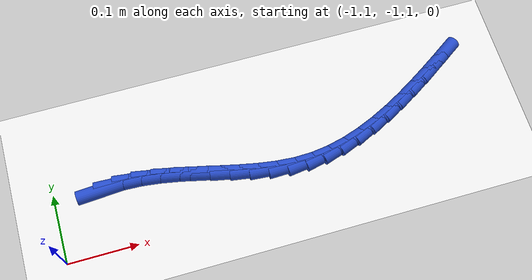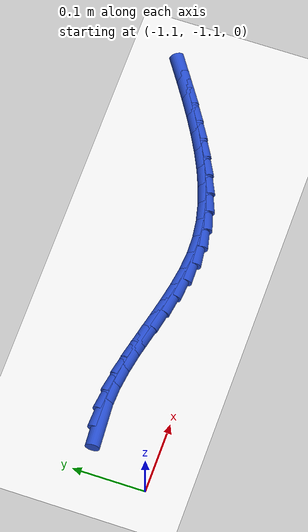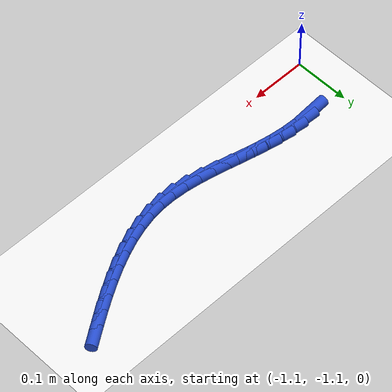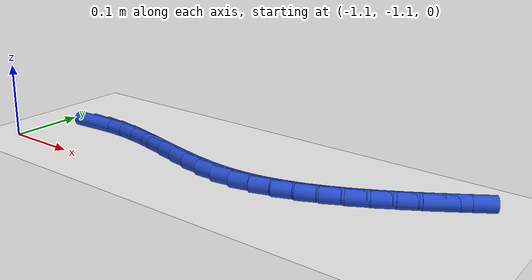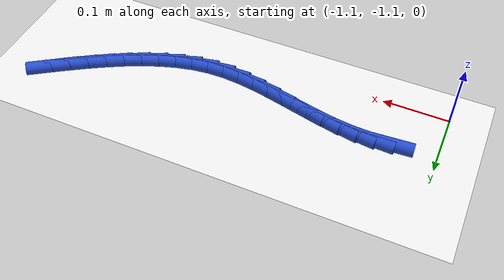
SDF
<sdf version="1.6">
 <world name="default">
  <model name="ground_plane">
   <static>1</static>
   <link name="link">
    <collision name="collision">
     <geometry><plane><normal>0 0 1</normal><size>100 100</size></plane></geometry>
     <surface><friction><ode><mu>100</mu><mu2>50</mu2></ode></friction></surface>
    </collision>
    <visual name="visual">
     <cast_shadows>0</cast_shadows>
     <geometry><plane><normal>0 0 1</normal><size>100 100</size></plane></geometry>
     <material>
      <script><uri>file://media/materials/scripts/gazebo.material</uri><name>Gazebo/WhiteGlow</name></script>
     </material>
    </visual>
   </link>
  </model>
  <model name="line">
   <link name="link_188">
    <pose>-1.027808554822008 -1.0131713352975278 0.01 0 1.57 0.06637535713950311</pose>
    <collision name="collision">
     <geometry><cylinder><radius>0.01</radius><length>0.08</length></cylinder></geometry>
    </collision>
    <visual name="visual">
     <material>
      <script><name>Gazebo/Blue</name><uri>file://media/materials/scripts/gazebo.material</uri></script>
     </material>
     <geometry><cylinder><radius>0.01</radius><length>0.08</length></cylinder></geometry>
    </visual>
   </link>
   <link name="link_189">
    <pose>-1.0020631567877005 -1.011459961309849 0.01 0 1.57 -0.04217029777245576</pose>
    <collision name="collision">
     <geometry><cylinder><radius>0.01</radius><length>0.08</length></cylinder></geometry>
    </collision>
    <visual name="visual">
     <material>
      <script><name>Gazebo/Blue</name><uri>file://media/materials/scripts/gazebo.material</uri></script>
     </material>
     <geometry><cylinder><radius>0.01</radius><length>0.08</length></cylinder></geometry>
    </visual>
   </link>
   <link name="link_190">
    <pose>-0.9759962746826879 -1.012559861564206 0.01 0 1.57 -0.12548968433131485</pose>
    <collision name="collision">
     <geometry><cylinder><radius>0.01</radius><length>0.08</length></cylinder></geometry>
    </collision>
    <visual name="visual">
     <material>
      <script><name>Gazebo/Blue</name><uri>file://media/materials/scripts/gazebo.material</uri></script>
     </material>
     <geometry><cylinder><radius>0.01</radius><length>0.08</length></cylinder></geometry>
    </visual>
   </link>
   <link name="link_191">
    <pose>-0.9496684139394722 -1.0158811892093345 0.01 0 1.57 -0.18417588736635157</pose>
    <collision name="collision">
     <geometry><cylinder><radius>0.01</radius><length>0.08</length></cylinder></geometry>
    </collision>
    <visual name="visual">
     <material>
      <script><name>Gazebo/Blue</name><uri>file://media/materials/scripts/gazebo.material</uri></script>
     </material>
     <geometry><cylinder><radius>0.01</radius><length>0.08</length></cylinder></geometry>
    </visual>
   </link>
   <link name="link_192">
    <pose>-0.923141795255889 -1.0208227533725767 0.01 0 1.57 -0.21993607332236292</pose>
    <collision name="collision">
     <geometry><cylinder><radius>0.01</radius><length>0.08</length></cylinder></geometry>
    </collision>
    <visual name="visual">
     <material>
      <script><name>Gazebo/Blue</name><uri>file://media/materials/scripts/gazebo.material</uri></script>
     </material>
     <geometry><cylinder><radius>0.01</radius><length>0.08</length></cylinder></geometry>
    </visual>
   </link>
   <link name="link_193">
    <pose>-0.8964786393297732 -1.0267833631812735 0.01 0 1.57 -0.2341820129360251</pose>
    <collision name="collision">
     <geometry><cylinder><radius>0.01</radius><length>0.08</length></cylinder></geometry>
    </collision>
    <visual name="visual">
     <material>
      <script><name>Gazebo/Blue</name><uri>file://media/materials/scripts/gazebo.material</uri></script>
     </material>
     <geometry><cylinder><radius>0.01</radius><length>0.08</length></cylinder></geometry>
    </visual>
   </link>
   <link name="link_194">
    <pose>-0.8697411668589599 -1.033161827762767 0.01 0 1.57 -0.227584930075162</pose>
    <collision name="collision">
     <geometry><cylinder><radius>0.01</radius><length>0.08</length></cylinder></geometry>
    </collision>
    <visual name="visual">
     <material>
      <script><name>Gazebo/Blue</name><uri>file://media/materials/scripts/gazebo.material</uri></script>
     </material>
     <geometry><cylinder><radius>0.01</radius><length>0.08</length></cylinder></geometry>
    </visual>
   </link>
   <link name="link_195">
    <pose>-0.8429915985412839 -1.0393569562443983 0.01 0 1.57 -0.19994086880559503</pose>
    <collision name="collision">
     <geometry><cylinder><radius>0.01</radius><length>0.08</length></cylinder></geometry>
    </collision>
    <visual name="visual">
     <material>
      <script><name>Gazebo/Blue</name><uri>file://media/materials/scripts/gazebo.material</uri></script>
     </material>
     <geometry><cylinder><radius>0.01</radius><length>0.08</length></cylinder></geometry>
    </visual>
   </link>
   <link name="link_196">
    <pose>-0.8162921550745807 -1.0447675577535094 0.01 0 1.57 -0.15024404210058395</pose>
    <collision name="collision">
     <geometry><cylinder><radius>0.01</radius><length>0.08</length></cylinder></geometry>
    </collision>
    <visual name="visual">
     <material>
      <script><name>Gazebo/Blue</name><uri>file://media/materials/scripts/gazebo.material</uri></script>
     </material>
     <geometry><cylinder><radius>0.01</radius><length>0.08</length></cylinder></geometry>
    </visual>
   </link>
   <link name="link_197">
    <pose>-0.7897050571566853 -1.0487924414174412 0.01 0 1.57 -0.07700681431027452</pose>
    <collision name="collision">
     <geometry><cylinder><radius>0.01</radius><length>0.08</length></cylinder></geometry>
    </collision>
    <visual name="visual">
     <material>
      <script><name>Gazebo/Blue</name><uri>file://media/materials/scripts/gazebo.material</uri></script>
     </material>
     <geometry><cylinder><radius>0.01</radius><length>0.08</length></cylinder></geometry>
    </visual>
   </link>
   <link name="link_198">
    <pose>-0.7632925254854327 -1.050830416363536 0.01 0 1.57 0.020876750950069713</pose>
    <collision name="collision">
     <geometry><cylinder><radius>0.01</radius><length>0.08</length></cylinder></geometry>
    </collision>
    <visual name="visual">
     <material>
      <script><name>Gazebo/Blue</name><uri>file://media/materials/scripts/gazebo.material</uri></script>
     </material>
     <geometry><cylinder><radius>0.01</radius><length>0.08</length></cylinder></geometry>
    </visual>
   </link>
   <link name="link_199">
    <pose>-0.7371165953285369 -1.0502838685842268 0.01 0 1.57 0.13113372892829112</pose>
    <collision name="collision">
     <geometry><cylinder><radius>0.01</radius><length>0.08</length></cylinder></geometry>
    </collision>
    <visual name="visual">
     <material>
      <script><name>Gazebo/Blue</name><uri>file://media/materials/scripts/gazebo.material</uri></script>
     </material>
     <geometry><cylinder><radius>0.01</radius><length>0.08</length></cylinder></geometry>
    </visual>
   </link>
   <link name="link_200">
    <pose>-0.7112230460676338 -1.0468687529308298 0.01 0 1.57 0.2307962932525081</pose>
    <collision name="collision">
     <geometry><cylinder><radius>0.01</radius><length>0.08</length></cylinder></geometry>
    </collision>
    <visual name="visual">
     <material>
      <script><name>Gazebo/Blue</name><uri>file://media/materials/scripts/gazebo.material</uri></script>
     </material>
     <geometry><cylinder><radius>0.01</radius><length>0.08</length></cylinder></geometry>
    </visual>
   </link>
   <link name="link_201">
    <pose>-0.6856289606400302 -1.0408545659846375 0.01 0 1.57 0.3167743897011805</pose>
    <collision name="collision">
     <geometry><cylinder><radius>0.01</radius><length>0.08</length></cylinder></geometry>
    </collision>
    <visual name="visual">
     <material>
      <script><name>Gazebo/Blue</name><uri>file://media/materials/scripts/gazebo.material</uri></script>
     </material>
     <geometry><cylinder><radius>0.01</radius><length>0.08</length></cylinder></geometry>
    </visual>
   </link>
   <link name="link_202">
    <pose>-0.6603484936357955 -1.0325672908510988 0.01 0 1.57 0.389226762305226</pose>
    <collision name="collision">
     <geometry><cylinder><radius>0.01</radius><length>0.08</length></cylinder></geometry>
    </collision>
    <visual name="visual">
     <material>
      <script><name>Gazebo/Blue</name><uri>file://media/materials/scripts/gazebo.material</uri></script>
     </material>
     <geometry><cylinder><radius>0.01</radius><length>0.08</length></cylinder></geometry>
    </visual>
   </link>
   <link name="link_203">
    <pose>-0.6353957996449995 -1.0223329106356638 0.01 0 1.57 0.44891708182701023</pose>
    <collision name="collision">
     <geometry><cylinder><radius>0.01</radius><length>0.08</length></cylinder></geometry>
    </collision>
    <visual name="visual">
     <material>
      <script><name>Gazebo/Blue</name><uri>file://media/materials/scripts/gazebo.material</uri></script>
     </material>
     <geometry><cylinder><radius>0.01</radius><length>0.08</length></cylinder></geometry>
    </visual>
   </link>
   <link name="link_204">
    <pose>-0.6107850332577115 -1.0104774084437822 0.01 0 1.57 0.4968270858961591</pose>
    <collision name="collision">
     <geometry><cylinder><radius>0.01</radius><length>0.08</length></cylinder></geometry>
    </collision>
    <visual name="visual">
     <material>
      <script><name>Gazebo/Blue</name><uri>file://media/materials/scripts/gazebo.material</uri></script>
     </material>
     <geometry><cylinder><radius>0.01</radius><length>0.08</length></cylinder></geometry>
    </visual>
   </link>
   <link name="link_205">
    <pose>-0.586530349064001 -0.9973267673809034 0.01 0 1.57 0.533902424276971</pose>
    <collision name="collision">
     <geometry><cylinder><radius>0.01</radius><length>0.08</length></cylinder></geometry>
    </collision>
    <visual name="visual">
     <material>
      <script><name>Gazebo/Blue</name><uri>file://media/materials/scripts/gazebo.material</uri></script>
     </material>
     <geometry><cylinder><radius>0.01</radius><length>0.08</length></cylinder></geometry>
    </visual>
   </link>
   <link name="link_206">
    <pose>-0.5626459016539374 -0.9832069705524771 0.01 0 1.57 0.5609042786805719</pose>
    <collision name="collision">
     <geometry><cylinder><radius>0.01</radius><length>0.08</length></cylinder></geometry>
    </collision>
    <visual name="visual">
     <material>
      <script><name>Gazebo/Blue</name><uri>file://media/materials/scripts/gazebo.material</uri></script>
     </material>
     <geometry><cylinder><radius>0.01</radius><length>0.08</length></cylinder></geometry>
    </visual>
   </link>
   <link name="link_207">
    <pose>-0.5391458456175903 -0.9684440010639526 0.01 0 1.57 0.578887061149224</pose>
    <collision name="collision">
     <geometry><cylinder><radius>0.01</radius><length>0.08</length></cylinder></geometry>
    </collision>
    <visual name="visual">
     <material>
      <script><name>Gazebo/Blue</name><uri>file://media/materials/scripts/gazebo.material</uri></script>
     </material>
     <geometry><cylinder><radius>0.01</radius><length>0.08</length></cylinder></geometry>
    </visual>
   </link>
   <link name="link_208">
    <pose>-0.5160448518199499 -0.9533456779311926 0.01 0 1.57 0.5946117172364356</pose>
    <collision name="collision">
     <geometry><cylinder><radius>0.01</radius><length>0.08</length></cylinder></geometry>
    </collision>
    <visual name="visual">
     <material>
      <script><name>Gazebo/Blue</name><uri>file://media/materials/scripts/gazebo.material</uri></script>
     </material>
     <geometry><cylinder><radius>0.01</radius><length>0.08</length></cylinder></geometry>
    </visual>
   </link>
  </model>
 </world>
</sdf>
